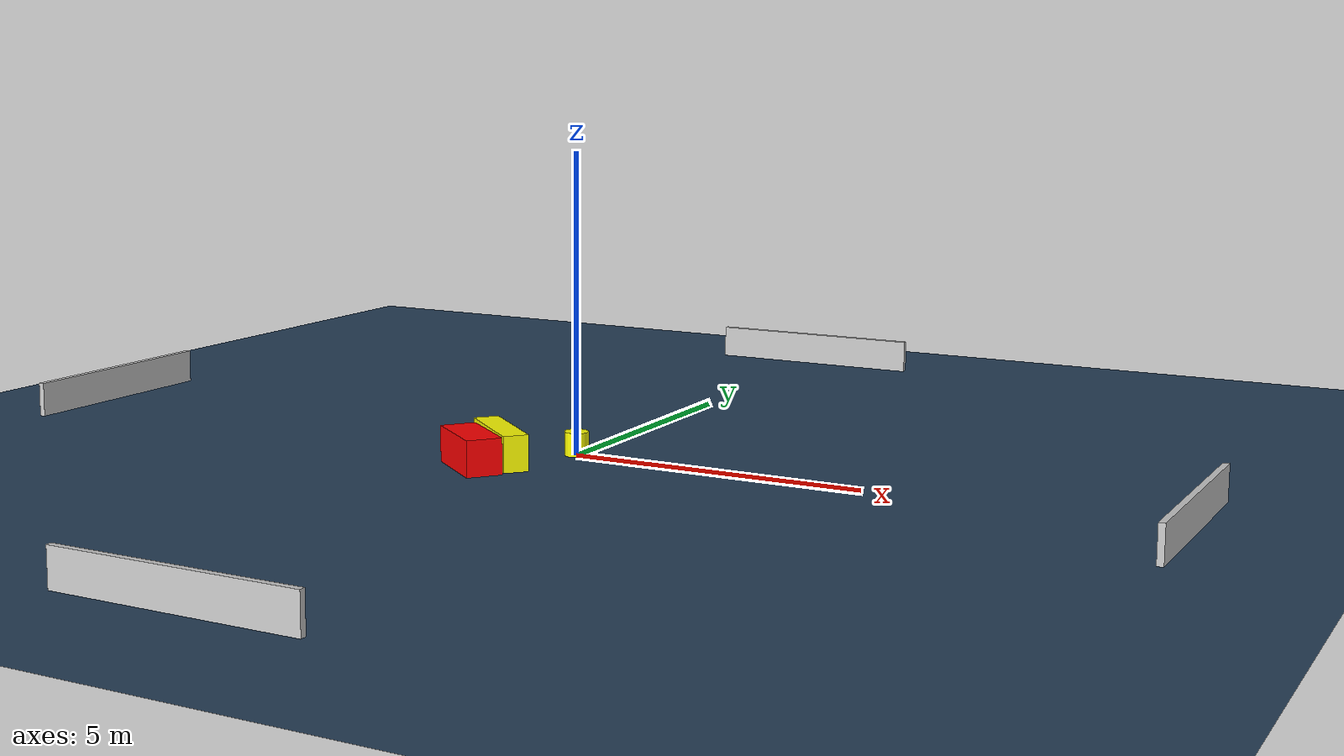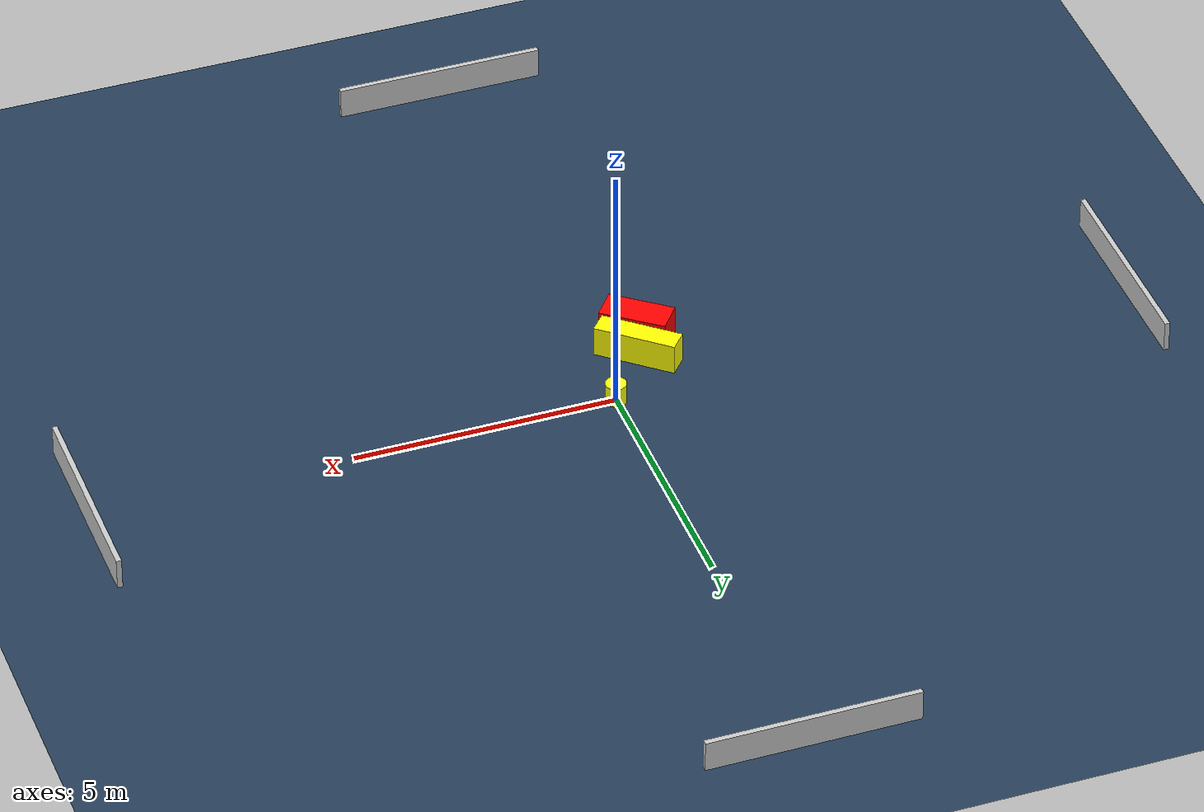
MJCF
<?xml version="1.0" ?>
<mujoco model="generated_environment">
  <option timestep="0.01" integrator="RK4" cone="elliptic"/>
  <default>
    <geom density="1"/>
  </default>
  <asset>
    <texture builtin="gradient" height="3072" name="skybox" rgb1="0.3 0.5 0.7" rgb2="0 0 0" type="skybox" width="512"/>
    <texture builtin="checker" height="300" name="groundplane" rgb1="0.2 0.3 0.4" rgb2="0.1 0.2 0.3" type="2d" width="300"/>
    <material name="groundplane" reflectance="0.2" texrepeat="5 5" texture="groundplane"/>
  </asset>
  <worldbody>
    <light dir="0 0 -1" directional="true" pos="0 0 1.5"/>
    <geom condim="3" friction="0.5 0.005 0.001" material="groundplane" name="floor" pos="0 0 0" size="0 0 0.05" type="plane"/>
    <body name="walls">
      <geom name="wall_1" condim="4" pos="-10.0 0.0 0.3" rgba="0.800000011920929 0.800000011920929 0.800000011920929 1.0" size="0.05 2.0 0.3" type="box"/>
      <geom name="wall_2" condim="4" pos="10.0 0.0 0.3" rgba="0.800000011920929 0.800000011920929 0.800000011920929 1.0" size="0.05 2.0 0.3" type="box"/>
      <geom name="wall_3" condim="4" pos="0.0 -10.0 0.3" rgba="0.800000011920929 0.800000011920929 0.800000011920929 1.0" size="2.0 0.05 0.3" type="box"/>
      <geom name="wall_4" condim="4" pos="0.0 10.0 0.3" rgba="0.800000011920929 0.800000011920929 0.800000011920929 1.0" size="2.0 0.05 0.3" type="box"/>
    </body>
    <body name="robot">
      <joint name="joint_x" type="slide" pos="0 0 0" axis="1 0 0"/>
      <joint name="joint_y" type="slide" pos="0 0 0" axis="0 1 0"/>
      <geom name="robot" type="cylinder" pos="0.0 0.0 0.2" size="0.2 0.2 0.0" mass="5.0" friction="1.0 0.005 0.0001" condim="4" rgba="1.0 1.0 0.0 1.0"/>
    </body>
    <body name="obstacle_1_movable">
      <geom name="obstacle_1_movable" condim="4" pos="-0.8128849250140782 -1.0627954839748308 0.3" euler="0 0 319.40742999104697" friction="0.0 0.005 0.001" rgba="1.0 1.0 0.0 1.0" size="0.7889167176040157 0.21257392045720544 0.3" type="box" mass="0.1"/>
      <joint type="free"/>
    </body>
    <body name="obstacle_2_static">
      <geom name="obstacle_2_static" condim="4" pos="-1.004931453676772 -1.6601085335926338 0.3" euler="0 0 51.76200604682198" friction="0.0 0.005 0.001" rgba="1.0 0.0 0.0 1.0" size="0.29866198271230154 0.6409145813940123 0.3" type="box"/>
    </body>
  </worldbody>
  <actuator>
    <motor name="actuator_x" joint="joint_x" gear="1" ctrlrange="-1 1"/>
    <motor name="actuator_y" joint="joint_y" gear="1" ctrlrange="-1 1"/>
  </actuator>
</mujoco>
